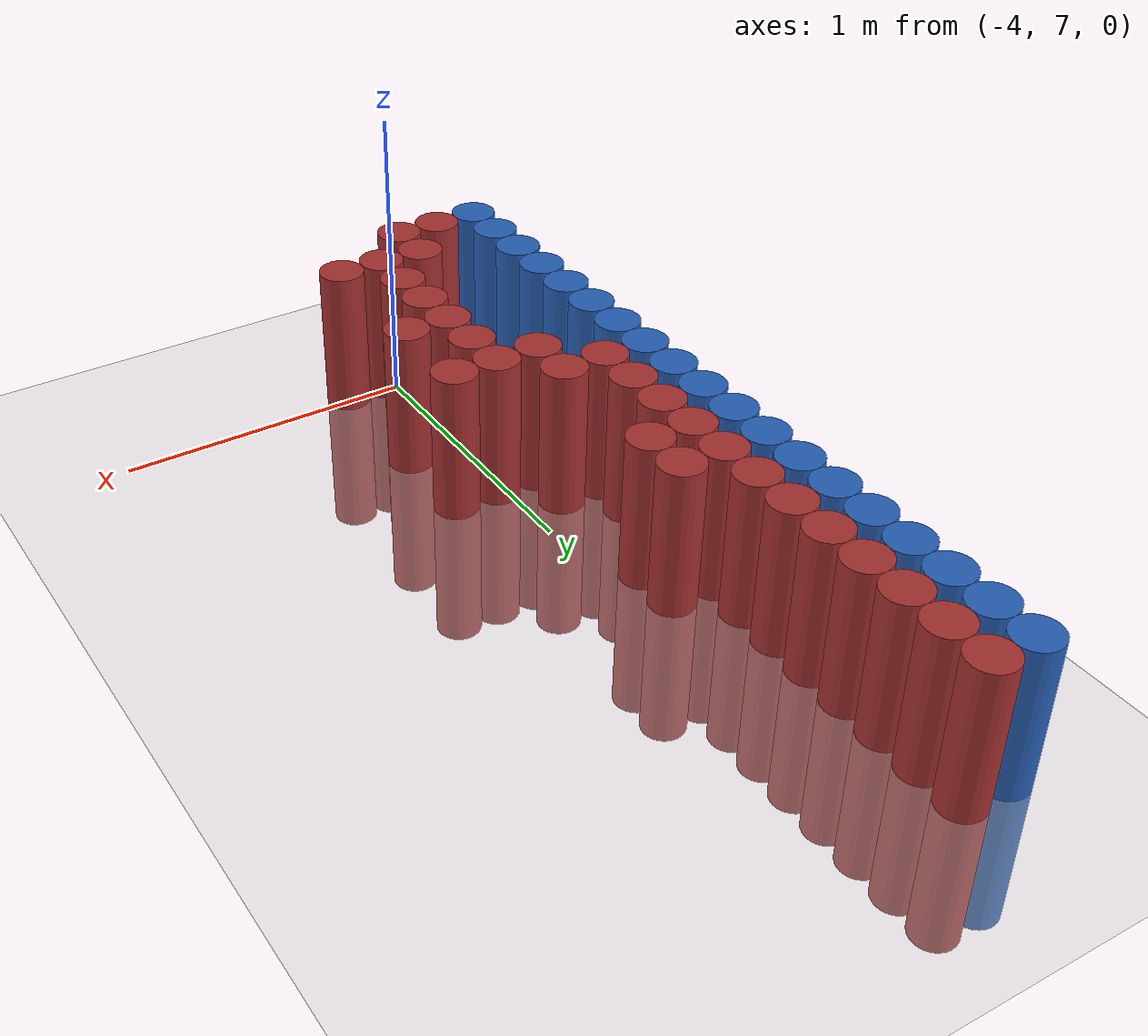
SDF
<sdf version="1.6">
 <world name="default">
  <model name="ground_plane">
   <static>1</static>
   <link name="link">
    <collision name="collision">
     <geometry><plane><normal>0 0 1</normal><size>100 100</size></plane></geometry>
     <surface><friction><ode><mu>100</mu><mu2>50</mu2></ode></friction></surface>
    </collision>
    <visual name="visual">
     <cast_shadows>0</cast_shadows>
     <geometry><plane><normal>0 0 1</normal><size>100 100</size></plane></geometry>
     <material>
      <script><uri>file://media/materials/scripts/gazebo.material</uri><name>Gazebo/Grey</name></script>
     </material>
    </visual>
   </link>
  </model>
  <model name="unit_cylinder_107">
   <static>1</static>
   <pose>-4.425000 6.825000 0.000000 0.000000 0.000000 0.000000</pose>
   <link name="link">
    <inertial>
     <mass>1</mass>
     <inertia><ixx>0.145833</ixx><ixy>0</ixy><ixz>0</ixz><iyy>0.145833</iyy><iyz>0</iyz><izz>0.125</izz></inertia>
    </inertial>
    <collision name="collision">
     <geometry><cylinder><radius>0.075000</radius><length>1</length></cylinder></geometry>
    </collision>
    <visual name="visual">
     <geometry><cylinder><radius>0.075000</radius><length>1</length></cylinder></geometry>
     <material>
      <ambient>0.152000 0.379000 0.720000 1</ambient>
      <diffuse>0.152000 0.379000 0.720000 1</diffuse>
     </material>
     <material>
      <script><name>Gazebo/Grey</name><uri>file://media/materials/scripts/gazebo.material</uri></script>
     </material>
    </visual>
   </link>
  </model>
  <model name="unit_cylinder_108">
   <static>1</static>
   <pose>-4.425000 6.975000 0.000000 0.000000 0.000000 0.000000</pose>
   <link name="link">
    <inertial>
     <mass>1</mass>
     <inertia><ixx>0.145833</ixx><ixy>0</ixy><ixz>0</ixz><iyy>0.145833</iyy><iyz>0</iyz><izz>0.125</izz></inertia>
    </inertial>
    <collision name="collision">
     <geometry><cylinder><radius>0.075000</radius><length>1</length></cylinder></geometry>
    </collision>
    <visual name="visual">
     <geometry><cylinder><radius>0.075000</radius><length>1</length></cylinder></geometry>
     <material>
      <ambient>0.152000 0.379000 0.720000 1</ambient>
      <diffuse>0.152000 0.379000 0.720000 1</diffuse>
     </material>
     <material>
      <script><name>Gazebo/Grey</name><uri>file://media/materials/scripts/gazebo.material</uri></script>
     </material>
    </visual>
   </link>
  </model>
  <model name="unit_cylinder_109">
   <static>1</static>
   <pose>-4.425000 7.125000 0.000000 0.000000 0.000000 0.000000</pose>
   <link name="link">
    <inertial>
     <mass>1</mass>
     <inertia><ixx>0.145833</ixx><ixy>0</ixy><ixz>0</ixz><iyy>0.145833</iyy><iyz>0</iyz><izz>0.125</izz></inertia>
    </inertial>
    <collision name="collision">
     <geometry><cylinder><radius>0.075000</radius><length>1</length></cylinder></geometry>
    </collision>
    <visual name="visual">
     <geometry><cylinder><radius>0.075000</radius><length>1</length></cylinder></geometry>
     <material>
      <ambient>0.152000 0.379000 0.720000 1</ambient>
      <diffuse>0.152000 0.379000 0.720000 1</diffuse>
     </material>
     <material>
      <script><name>Gazebo/Grey</name><uri>file://media/materials/scripts/gazebo.material</uri></script>
     </material>
    </visual>
   </link>
  </model>
  <model name="unit_cylinder_110">
   <static>1</static>
   <pose>-4.425000 7.275000 0.000000 0.000000 0.000000 0.000000</pose>
   <link name="link">
    <inertial>
     <mass>1</mass>
     <inertia><ixx>0.145833</ixx><ixy>0</ixy><ixz>0</ixz><iyy>0.145833</iyy><iyz>0</iyz><izz>0.125</izz></inertia>
    </inertial>
    <collision name="collision">
     <geometry><cylinder><radius>0.075000</radius><length>1</length></cylinder></geometry>
    </collision>
    <visual name="visual">
     <geometry><cylinder><radius>0.075000</radius><length>1</length></cylinder></geometry>
     <material>
      <ambient>0.152000 0.379000 0.720000 1</ambient>
      <diffuse>0.152000 0.379000 0.720000 1</diffuse>
     </material>
     <material>
      <script><name>Gazebo/Grey</name><uri>file://media/materials/scripts/gazebo.material</uri></script>
     </material>
    </visual>
   </link>
  </model>
  <model name="unit_cylinder_111">
   <static>1</static>
   <pose>-4.425000 7.425000 0.000000 0.000000 0.000000 0.000000</pose>
   <link name="link">
    <inertial>
     <mass>1</mass>
     <inertia><ixx>0.145833</ixx><ixy>0</ixy><ixz>0</ixz><iyy>0.145833</iyy><iyz>0</iyz><izz>0.125</izz></inertia>
    </inertial>
    <collision name="collision">
     <geometry><cylinder><radius>0.075000</radius><length>1</length></cylinder></geometry>
    </collision>
    <visual name="visual">
     <geometry><cylinder><radius>0.075000</radius><length>1</length></cylinder></geometry>
     <material>
      <ambient>0.152000 0.379000 0.720000 1</ambient>
      <diffuse>0.152000 0.379000 0.720000 1</diffuse>
     </material>
     <material>
      <script><name>Gazebo/Grey</name><uri>file://media/materials/scripts/gazebo.material</uri></script>
     </material>
    </visual>
   </link>
  </model>
  <model name="unit_cylinder_112">
   <static>1</static>
   <pose>-4.425000 7.575000 0.000000 0.000000 0.000000 0.000000</pose>
   <link name="link">
    <inertial>
     <mass>1</mass>
     <inertia><ixx>0.145833</ixx><ixy>0</ixy><ixz>0</ixz><iyy>0.145833</iyy><iyz>0</iyz><izz>0.125</izz></inertia>
    </inertial>
    <collision name="collision">
     <geometry><cylinder><radius>0.075000</radius><length>1</length></cylinder></geometry>
    </collision>
    <visual name="visual">
     <geometry><cylinder><radius>0.075000</radius><length>1</length></cylinder></geometry>
     <material>
      <ambient>0.152000 0.379000 0.720000 1</ambient>
      <diffuse>0.152000 0.379000 0.720000 1</diffuse>
     </material>
     <material>
      <script><name>Gazebo/Grey</name><uri>file://media/materials/scripts/gazebo.material</uri></script>
     </material>
    </visual>
   </link>
  </model>
  <model name="unit_cylinder_113">
   <static>1</static>
   <pose>-4.425000 7.725000 0.000000 0.000000 0.000000 0.000000</pose>
   <link name="link">
    <inertial>
     <mass>1</mass>
     <inertia><ixx>0.145833</ixx><ixy>0</ixy><ixz>0</ixz><iyy>0.145833</iyy><iyz>0</iyz><izz>0.125</izz></inertia>
    </inertial>
    <collision name="collision">
     <geometry><cylinder><radius>0.075000</radius><length>1</length></cylinder></geometry>
    </collision>
    <visual name="visual">
     <geometry><cylinder><radius>0.075000</radius><length>1</length></cylinder></geometry>
     <material>
      <ambient>0.152000 0.379000 0.720000 1</ambient>
      <diffuse>0.152000 0.379000 0.720000 1</diffuse>
     </material>
     <material>
      <script><name>Gazebo/Grey</name><uri>file://media/materials/scripts/gazebo.material</uri></script>
     </material>
    </visual>
   </link>
  </model>
  <model name="unit_cylinder_114">
   <static>1</static>
   <pose>-4.425000 7.875000 0.000000 0.000000 0.000000 0.000000</pose>
   <link name="link">
    <inertial>
     <mass>1</mass>
     <inertia><ixx>0.145833</ixx><ixy>0</ixy><ixz>0</ixz><iyy>0.145833</iyy><iyz>0</iyz><izz>0.125</izz></inertia>
    </inertial>
    <collision name="collision">
     <geometry><cylinder><radius>0.075000</radius><length>1</length></cylinder></geometry>
    </collision>
    <visual name="visual">
     <geometry><cylinder><radius>0.075000</radius><length>1</length></cylinder></geometry>
     <material>
      <ambient>0.152000 0.379000 0.720000 1</ambient>
      <diffuse>0.152000 0.379000 0.720000 1</diffuse>
     </material>
     <material>
      <script><name>Gazebo/Grey</name><uri>file://media/materials/scripts/gazebo.material</uri></script>
     </material>
    </visual>
   </link>
  </model>
  <model name="unit_cylinder_115">
   <static>1</static>
   <pose>-4.425000 8.025000 0.000000 0.000000 0.000000 0.000000</pose>
   <link name="link">
    <inertial>
     <mass>1</mass>
     <inertia><ixx>0.145833</ixx><ixy>0</ixy><ixz>0</ixz><iyy>0.145833</iyy><iyz>0</iyz><izz>0.125</izz></inertia>
    </inertial>
    <collision name="collision">
     <geometry><cylinder><radius>0.075000</radius><length>1</length></cylinder></geometry>
    </collision>
    <visual name="visual">
     <geometry><cylinder><radius>0.075000</radius><length>1</length></cylinder></geometry>
     <material>
      <ambient>0.152000 0.379000 0.720000 1</ambient>
      <diffuse>0.152000 0.379000 0.720000 1</diffuse>
     </material>
     <material>
      <script><name>Gazebo/Grey</name><uri>file://media/materials/scripts/gazebo.material</uri></script>
     </material>
    </visual>
   </link>
  </model>
  <model name="unit_cylinder_116">
   <static>1</static>
   <pose>-4.425000 8.175000 0.000000 0.000000 0.000000 0.000000</pose>
   <link name="link">
    <inertial>
     <mass>1</mass>
     <inertia><ixx>0.145833</ixx><ixy>0</ixy><ixz>0</ixz><iyy>0.145833</iyy><iyz>0</iyz><izz>0.125</izz></inertia>
    </inertial>
    <collision name="collision">
     <geometry><cylinder><radius>0.075000</radius><length>1</length></cylinder></geometry>
    </collision>
    <visual name="visual">
     <geometry><cylinder><radius>0.075000</radius><length>1</length></cylinder></geometry>
     <material>
      <ambient>0.152000 0.379000 0.720000 1</ambient>
      <diffuse>0.152000 0.379000 0.720000 1</diffuse>
     </material>
     <material>
      <script><name>Gazebo/Grey</name><uri>file://media/materials/scripts/gazebo.material</uri></script>
     </material>
    </visual>
   </link>
  </model>
  <model name="unit_cylinder_117">
   <static>1</static>
   <pose>-4.425000 8.325000 0.000000 0.000000 0.000000 0.000000</pose>
   <link name="link">
    <inertial>
     <mass>1</mass>
     <inertia><ixx>0.145833</ixx><ixy>0</ixy><ixz>0</ixz><iyy>0.145833</iyy><iyz>0</iyz><izz>0.125</izz></inertia>
    </inertial>
    <collision name="collision">
     <geometry><cylinder><radius>0.075000</radius><length>1</length></cylinder></geometry>
    </collision>
    <visual name="visual">
     <geometry><cylinder><radius>0.075000</radius><length>1</length></cylinder></geometry>
     <material>
      <ambient>0.152000 0.379000 0.720000 1</ambient>
      <diffuse>0.152000 0.379000 0.720000 1</diffuse>
     </material>
     <material>
      <script><name>Gazebo/Grey</name><uri>file://media/materials/scripts/gazebo.material</uri></script>
     </material>
    </visual>
   </link>
  </model>
  <model name="unit_cylinder_118">
   <static>1</static>
   <pose>-4.425000 8.475000 0.000000 0.000000 0.000000 0.000000</pose>
   <link name="link">
    <inertial>
     <mass>1</mass>
     <inertia><ixx>0.145833</ixx><ixy>0</ixy><ixz>0</ixz><iyy>0.145833</iyy><iyz>0</iyz><izz>0.125</izz></inertia>
    </inertial>
    <collision name="collision">
     <geometry><cylinder><radius>0.075000</radius><length>1</length></cylinder></geometry>
    </collision>
    <visual name="visual">
     <geometry><cylinder><radius>0.075000</radius><length>1</length></cylinder></geometry>
     <material>
      <ambient>0.152000 0.379000 0.720000 1</ambient>
      <diffuse>0.152000 0.379000 0.720000 1</diffuse>
     </material>
     <material>
      <script><name>Gazebo/Grey</name><uri>file://media/materials/scripts/gazebo.material</uri></script>
     </material>
    </visual>
   </link>
  </model>
  <model name="unit_cylinder_119">
   <static>1</static>
   <pose>-4.425000 8.625000 0.000000 0.000000 0.000000 0.000000</pose>
   <link name="link">
    <inertial>
     <mass>1</mass>
     <inertia><ixx>0.145833</ixx><ixy>0</ixy><ixz>0</ixz><iyy>0.145833</iyy><iyz>0</iyz><izz>0.125</izz></inertia>
    </inertial>
    <collision name="collision">
     <geometry><cylinder><radius>0.075000</radius><length>1</length></cylinder></geometry>
    </collision>
    <visual name="visual">
     <geometry><cylinder><radius>0.075000</radius><length>1</length></cylinder></geometry>
     <material>
      <ambient>0.152000 0.379000 0.720000 1</ambient>
      <diffuse>0.152000 0.379000 0.720000 1</diffuse>
     </material>
     <material>
      <script><name>Gazebo/Grey</name><uri>file://media/materials/scripts/gazebo.material</uri></script>
     </material>
    </visual>
   </link>
  </model>
  <model name="unit_cylinder_120">
   <static>1</static>
   <pose>-4.425000 8.775000 0.000000 0.000000 0.000000 0.000000</pose>
   <link name="link">
    <inertial>
     <mass>1</mass>
     <inertia><ixx>0.145833</ixx><ixy>0</ixy><ixz>0</ixz><iyy>0.145833</iyy><iyz>0</iyz><izz>0.125</izz></inertia>
    </inertial>
    <collision name="collision">
     <geometry><cylinder><radius>0.075000</radius><length>1</length></cylinder></geometry>
    </collision>
    <visual name="visual">
     <geometry><cylinder><radius>0.075000</radius><length>1</length></cylinder></geometry>
     <material>
      <ambient>0.152000 0.379000 0.720000 1</ambient>
      <diffuse>0.152000 0.379000 0.720000 1</diffuse>
     </material>
     <material>
      <script><name>Gazebo/Grey</name><uri>file://media/materials/scripts/gazebo.material</uri></script>
     </material>
    </visual>
   </link>
  </model>
  <model name="unit_cylinder_121">
   <static>1</static>
   <pose>-4.425000 8.925000 0.000000 0.000000 0.000000 0.000000</pose>
   <link name="link">
    <inertial>
     <mass>1</mass>
     <inertia><ixx>0.145833</ixx><ixy>0</ixy><ixz>0</ixz><iyy>0.145833</iyy><iyz>0</iyz><izz>0.125</izz></inertia>
    </inertial>
    <collision name="collision">
     <geometry><cylinder><radius>0.075000</radius><length>1</length></cylinder></geometry>
    </collision>
    <visual name="visual">
     <geometry><cylinder><radius>0.075000</radius><length>1</length></cylinder></geometry>
     <material>
      <ambient>0.152000 0.379000 0.720000 1</ambient>
      <diffuse>0.152000 0.379000 0.720000 1</diffuse>
     </material>
     <material>
      <script><name>Gazebo/Grey</name><uri>file://media/materials/scripts/gazebo.material</uri></script>
     </material>
    </visual>
   </link>
  </model>
  <model name="unit_cylinder_122">
   <static>1</static>
   <pose>-4.425000 9.075000 0.000000 0.000000 0.000000 0.000000</pose>
   <link name="link">
    <inertial>
     <mass>1</mass>
     <inertia><ixx>0.145833</ixx><ixy>0</ixy><ixz>0</ixz><iyy>0.145833</iyy><iyz>0</iyz><izz>0.125</izz></inertia>
    </inertial>
    <collision name="collision">
     <geometry><cylinder><radius>0.075000</radius><length>1</length></cylinder></geometry>
    </collision>
    <visual name="visual">
     <geometry><cylinder><radius>0.075000</radius><length>1</length></cylinder></geometry>
     <material>
      <ambient>0.152000 0.379000 0.720000 1</ambient>
      <diffuse>0.152000 0.379000 0.720000 1</diffuse>
     </material>
     <material>
      <script><name>Gazebo/Grey</name><uri>file://media/materials/scripts/gazebo.material</uri></script>
     </material>
    </visual>
   </link>
  </model>
  <model name="unit_cylinder_123">
   <static>1</static>
   <pose>-4.425000 9.225000 0.000000 0.000000 0.000000 0.000000</pose>
   <link name="link">
    <inertial>
     <mass>1</mass>
     <inertia><ixx>0.145833</ixx><ixy>0</ixy><ixz>0</ixz><iyy>0.145833</iyy><iyz>0</iyz><izz>0.125</izz></inertia>
    </inertial>
    <collision name="collision">
     <geometry><cylinder><radius>0.075000</radius><length>1</length></cylinder></geometry>
    </collision>
    <visual name="visual">
     <geometry><cylinder><radius>0.075000</radius><length>1</length></cylinder></geometry>
     <material>
      <ambient>0.152000 0.379000 0.720000 1</ambient>
      <diffuse>0.152000 0.379000 0.720000 1</diffuse>
     </material>
     <material>
      <script><name>Gazebo/Grey</name><uri>file://media/materials/scripts/gazebo.material</uri></script>
     </material>
    </visual>
   </link>
  </model>
  <model name="unit_cylinder_124">
   <static>1</static>
   <pose>-4.425000 9.375000 0.000000 0.000000 0.000000 0.000000</pose>
   <link name="link">
    <inertial>
     <mass>1</mass>
     <inertia><ixx>0.145833</ixx><ixy>0</ixy><ixz>0</ixz><iyy>0.145833</iyy><iyz>0</iyz><izz>0.125</izz></inertia>
    </inertial>
    <collision name="collision">
     <geometry><cylinder><radius>0.075000</radius><length>1</length></cylinder></geometry>
    </collision>
    <visual name="visual">
     <geometry><cylinder><radius>0.075000</radius><length>1</length></cylinder></geometry>
     <material>
      <ambient>0.152000 0.379000 0.720000 1</ambient>
      <diffuse>0.152000 0.379000 0.720000 1</diffuse>
     </material>
     <material>
      <script><name>Gazebo/Grey</name><uri>file://media/materials/scripts/gazebo.material</uri></script>
     </material>
    </visual>
   </link>
  </model>
  <model name="unit_cylinder_125">
   <static>1</static>
   <pose>-4.425000 9.525000 0.000000 0.000000 0.000000 0.000000</pose>
   <link name="link">
    <inertial>
     <mass>1</mass>
     <inertia><ixx>0.145833</ixx><ixy>0</ixy><ixz>0</ixz><iyy>0.145833</iyy><iyz>0</iyz><izz>0.125</izz></inertia>
    </inertial>
    <collision name="collision">
     <geometry><cylinder><radius>0.075000</radius><length>1</length></cylinder></geometry>
    </collision>
    <visual name="visual">
     <geometry><cylinder><radius>0.075000</radius><length>1</length></cylinder></geometry>
     <material>
      <ambient>0.152000 0.379000 0.720000 1</ambient>
      <diffuse>0.152000 0.379000 0.720000 1</diffuse>
     </material>
     <material>
      <script><name>Gazebo/Grey</name><uri>file://media/materials/scripts/gazebo.material</uri></script>
     </material>
    </visual>
   </link>
  </model>
  <model name="unit_cylinder_130">
   <static>1</static>
   <pose>-4.275000 6.825000 0.000000 0.000000 0.000000 0.000000</pose>
   <link name="link">
    <inertial>
     <mass>1</mass>
     <inertia><ixx>0.145833</ixx><ixy>0</ixy><ixz>0</ixz><iyy>0.145833</iyy><iyz>0</iyz><izz>0.125</izz></inertia>
    </inertial>
    <collision name="collision">
     <geometry><cylinder><radius>0.075000</radius><length>1</length></cylinder></geometry>
    </collision>
    <visual name="visual">
     <geometry><cylinder><radius>0.075000</radius><length>1</length></cylinder></geometry>
     <material>
      <ambient>0.648000 0.192000 0.192000 1</ambient>
      <diffuse>0.648000 0.192000 0.192000 1</diffuse>
     </material>
     <material>
      <script><name>Gazebo/Grey</name><uri>file://media/materials/scripts/gazebo.material</uri></script>
     </material>
    </visual>
   </link>
  </model>
  <model name="unit_cylinder_131">
   <static>1</static>
   <pose>-4.275000 7.875000 0.000000 0.000000 0.000000 0.000000</pose>
   <link name="link">
    <inertial>
     <mass>1</mass>
     <inertia><ixx>0.145833</ixx><ixy>0</ixy><ixz>0</ixz><iyy>0.145833</iyy><iyz>0</iyz><izz>0.125</izz></inertia>
    </inertial>
    <collision name="collision">
     <geometry><cylinder><radius>0.075000</radius><length>1</length></cylinder></geometry>
    </collision>
    <visual name="visual">
     <geometry><cylinder><radius>0.075000</radius><length>1</length></cylinder></geometry>
     <material>
      <ambient>0.648000 0.192000 0.192000 1</ambient>
      <diffuse>0.648000 0.192000 0.192000 1</diffuse>
     </material>
     <material>
      <script><name>Gazebo/Grey</name><uri>file://media/materials/scripts/gazebo.material</uri></script>
     </material>
    </visual>
   </link>
  </model>
  <model name="unit_cylinder_132">
   <static>1</static>
   <pose>-4.275000 8.025000 0.000000 0.000000 0.000000 0.000000</pose>
   <link name="link">
    <inertial>
     <mass>1</mass>
     <inertia><ixx>0.145833</ixx><ixy>0</ixy><ixz>0</ixz><iyy>0.145833</iyy><iyz>0</iyz><izz>0.125</izz></inertia>
    </inertial>
    <collision name="collision">
     <geometry><cylinder><radius>0.075000</radius><length>1</length></cylinder></geometry>
    </collision>
    <visual name="visual">
     <geometry><cylinder><radius>0.075000</radius><length>1</length></cylinder></geometry>
     <material>
      <ambient>0.648000 0.192000 0.192000 1</ambient>
      <diffuse>0.648000 0.192000 0.192000 1</diffuse>
     </material>
     <material>
      <script><name>Gazebo/Grey</name><uri>file://media/materials/scripts/gazebo.material</uri></script>
     </material>
    </visual>
   </link>
  </model>
  <model name="unit_cylinder_133">
   <static>1</static>
   <pose>-4.275000 8.175000 0.000000 0.000000 0.000000 0.000000</pose>
   <link name="link">
    <inertial>
     <mass>1</mass>
     <inertia><ixx>0.145833</ixx><ixy>0</ixy><ixz>0</ixz><iyy>0.145833</iyy><iyz>0</iyz><izz>0.125</izz></inertia>
    </inertial>
    <collision name="collision">
     <geometry><cylinder><radius>0.075000</radius><length>1</length></cylinder></geometry>
    </collision>
    <visual name="visual">
     <geometry><cylinder><radius>0.075000</radius><length>1</length></cylinder></geometry>
     <material>
      <ambient>0.648000 0.192000 0.192000 1</ambient>
      <diffuse>0.648000 0.192000 0.192000 1</diffuse>
     </material>
     <material>
      <script><name>Gazebo/Grey</name><uri>file://media/materials/scripts/gazebo.material</uri></script>
     </material>
    </visual>
   </link>
  </model>
  <model name="unit_cylinder_134">
   <static>1</static>
   <pose>-4.275000 8.325000 0.000000 0.000000 0.000000 0.000000</pose>
   <link name="link">
    <inertial>
     <mass>1</mass>
     <inertia><ixx>0.145833</ixx><ixy>0</ixy><ixz>0</ixz><iyy>0.145833</iyy><iyz>0</iyz><izz>0.125</izz></inertia>
    </inertial>
    <collision name="collision">
     <geometry><cylinder><radius>0.075000</radius><length>1</length></cylinder></geometry>
    </collision>
    <visual name="visual">
     <geometry><cylinder><radius>0.075000</radius><length>1</length></cylinder></geometry>
     <material>
      <ambient>0.648000 0.192000 0.192000 1</ambient>
      <diffuse>0.648000 0.192000 0.192000 1</diffuse>
     </material>
     <material>
      <script><name>Gazebo/Grey</name><uri>file://media/materials/scripts/gazebo.material</uri></script>
     </material>
    </visual>
   </link>
  </model>
  <model name="unit_cylinder_135">
   <static>1</static>
   <pose>-4.275000 8.475000 0.000000 0.000000 0.000000 0.000000</pose>
   <link name="link">
    <inertial>
     <mass>1</mass>
     <inertia><ixx>0.145833</ixx><ixy>0</ixy><ixz>0</ixz><iyy>0.145833</iyy><iyz>0</iyz><izz>0.125</izz></inertia>
    </inertial>
    <collision name="collision">
     <geometry><cylinder><radius>0.075000</radius><length>1</length></cylinder></geometry>
    </collision>
    <visual name="visual">
     <geometry><cylinder><radius>0.075000</radius><length>1</length></cylinder></geometry>
     <material>
      <ambient>0.648000 0.192000 0.192000 1</ambient>
      <diffuse>0.648000 0.192000 0.192000 1</diffuse>
     </material>
     <material>
      <script><name>Gazebo/Grey</name><uri>file://media/materials/scripts/gazebo.material</uri></script>
     </material>
    </visual>
   </link>
  </model>
  <model name="unit_cylinder_136">
   <static>1</static>
   <pose>-4.275000 8.625000 0.000000 0.000000 0.000000 0.000000</pose>
   <link name="link">
    <inertial>
     <mass>1</mass>
     <inertia><ixx>0.145833</ixx><ixy>0</ixy><ixz>0</ixz><iyy>0.145833</iyy><iyz>0</iyz><izz>0.125</izz></inertia>
    </inertial>
    <collision name="collision">
     <geometry><cylinder><radius>0.075000</radius><length>1</length></cylinder></geometry>
    </collision>
    <visual name="visual">
     <geometry><cylinder><radius>0.075000</radius><length>1</length></cylinder></geometry>
     <material>
      <ambient>0.648000 0.192000 0.192000 1</ambient>
      <diffuse>0.648000 0.192000 0.192000 1</diffuse>
     </material>
     <material>
      <script><name>Gazebo/Grey</name><uri>file://media/materials/scripts/gazebo.material</uri></script>
     </material>
    </visual>
   </link>
  </model>
  <model name="unit_cylinder_137">
   <static>1</static>
   <pose>-4.275000 8.775000 0.000000 0.000000 0.000000 0.000000</pose>
   <link name="link">
    <inertial>
     <mass>1</mass>
     <inertia><ixx>0.145833</ixx><ixy>0</ixy><ixz>0</ixz><iyy>0.145833</iyy><iyz>0</iyz><izz>0.125</izz></inertia>
    </inertial>
    <collision name="collision">
     <geometry><cylinder><radius>0.075000</radius><length>1</length></cylinder></geometry>
    </collision>
    <visual name="visual">
     <geometry><cylinder><radius>0.075000</radius><length>1</length></cylinder></geometry>
     <material>
      <ambient>0.648000 0.192000 0.192000 1</ambient>
      <diffuse>0.648000 0.192000 0.192000 1</diffuse>
     </material>
     <material>
      <script><name>Gazebo/Grey</name><uri>file://media/materials/scripts/gazebo.material</uri></script>
     </material>
    </visual>
   </link>
  </model>
  <model name="unit_cylinder_138">
   <static>1</static>
   <pose>-4.275000 8.925000 0.000000 0.000000 0.000000 0.000000</pose>
   <link name="link">
    <inertial>
     <mass>1</mass>
     <inertia><ixx>0.145833</ixx><ixy>0</ixy><ixz>0</ixz><iyy>0.145833</iyy><iyz>0</iyz><izz>0.125</izz></inertia>
    </inertial>
    <collision name="collision">
     <geometry><cylinder><radius>0.075000</radius><length>1</length></cylinder></geometry>
    </collision>
    <visual name="visual">
     <geometry><cylinder><radius>0.075000</radius><length>1</length></cylinder></geometry>
     <material>
      <ambient>0.648000 0.192000 0.192000 1</ambient>
      <diffuse>0.648000 0.192000 0.192000 1</diffuse>
     </material>
     <material>
      <script><name>Gazebo/Grey</name><uri>file://media/materials/scripts/gazebo.material</uri></script>
     </material>
    </visual>
   </link>
  </model>
  <model name="unit_cylinder_139">
   <static>1</static>
   <pose>-4.275000 9.075000 0.000000 0.000000 0.000000 0.000000</pose>
   <link name="link">
    <inertial>
     <mass>1</mass>
     <inertia><ixx>0.145833</ixx><ixy>0</ixy><ixz>0</ixz><iyy>0.145833</iyy><iyz>0</iyz><izz>0.125</izz></inertia>
    </inertial>
    <collision name="collision">
     <geometry><cylinder><radius>0.075000</radius><length>1</length></cylinder></geometry>
    </collision>
    <visual name="visual">
     <geometry><cylinder><radius>0.075000</radius><length>1</length></cylinder></geometry>
     <material>
      <ambient>0.648000 0.192000 0.192000 1</ambient>
      <diffuse>0.648000 0.192000 0.192000 1</diffuse>
     </material>
     <material>
      <script><name>Gazebo/Grey</name><uri>file://media/materials/scripts/gazebo.material</uri></script>
     </material>
    </visual>
   </link>
  </model>
  <model name="unit_cylinder_140">
   <static>1</static>
   <pose>-4.275000 9.225000 0.000000 0.000000 0.000000 0.000000</pose>
   <link name="link">
    <inertial>
     <mass>1</mass>
     <inertia><ixx>0.145833</ixx><ixy>0</ixy><ixz>0</ixz><iyy>0.145833</iyy><iyz>0</iyz><izz>0.125</izz></inertia>
    </inertial>
    <collision name="collision">
     <geometry><cylinder><radius>0.075000</radius><length>1</length></cylinder></geometry>
    </collision>
    <visual name="visual">
     <geometry><cylinder><radius>0.075000</radius><length>1</length></cylinder></geometry>
     <material>
      <ambient>0.648000 0.192000 0.192000 1</ambient>
      <diffuse>0.648000 0.192000 0.192000 1</diffuse>
     </material>
     <material>
      <script><name>Gazebo/Grey</name><uri>file://media/materials/scripts/gazebo.material</uri></script>
     </material>
    </visual>
   </link>
  </model>
  <model name="unit_cylinder_141">
   <static>1</static>
   <pose>-4.275000 9.375000 0.000000 0.000000 0.000000 0.000000</pose>
   <link name="link">
    <inertial>
     <mass>1</mass>
     <inertia><ixx>0.145833</ixx><ixy>0</ixy><ixz>0</ixz><iyy>0.145833</iyy><iyz>0</iyz><izz>0.125</izz></inertia>
    </inertial>
    <collision name="collision">
     <geometry><cylinder><radius>0.075000</radius><length>1</length></cylinder></geometry>
    </collision>
    <visual name="visual">
     <geometry><cylinder><radius>0.075000</radius><length>1</length></cylinder></geometry>
     <material>
      <ambient>0.648000 0.192000 0.192000 1</ambient>
      <diffuse>0.648000 0.192000 0.192000 1</diffuse>
     </material>
     <material>
      <script><name>Gazebo/Grey</name><uri>file://media/materials/scripts/gazebo.material</uri></script>
     </material>
    </visual>
   </link>
  </model>
  <model name="unit_cylinder_142">
   <static>1</static>
   <pose>-4.275000 9.525000 0.000000 0.000000 0.000000 0.000000</pose>
   <link name="link">
    <inertial>
     <mass>1</mass>
     <inertia><ixx>0.145833</ixx><ixy>0</ixy><ixz>0</ixz><iyy>0.145833</iyy><iyz>0</iyz><izz>0.125</izz></inertia>
    </inertial>
    <collision name="collision">
     <geometry><cylinder><radius>0.075000</radius><length>1</length></cylinder></geometry>
    </collision>
    <visual name="visual">
     <geometry><cylinder><radius>0.075000</radius><length>1</length></cylinder></geometry>
     <material>
      <ambient>0.648000 0.192000 0.192000 1</ambient>
      <diffuse>0.648000 0.192000 0.192000 1</diffuse>
     </material>
     <material>
      <script><name>Gazebo/Grey</name><uri>file://media/materials/scripts/gazebo.material</uri></script>
     </material>
    </visual>
   </link>
  </model>
  <model name="unit_cylinder_143">
   <static>1</static>
   <pose>-4.125000 6.825000 0.000000 0.000000 0.000000 0.000000</pose>
   <link name="link">
    <inertial>
     <mass>1</mass>
     <inertia><ixx>0.145833</ixx><ixy>0</ixy><ixz>0</ixz><iyy>0.145833</iyy><iyz>0</iyz><izz>0.125</izz></inertia>
    </inertial>
    <collision name="collision">
     <geometry><cylinder><radius>0.075000</radius><length>1</length></cylinder></geometry>
    </collision>
    <visual name="visual">
     <geometry><cylinder><radius>0.075000</radius><length>1</length></cylinder></geometry>
     <material>
      <ambient>0.648000 0.192000 0.192000 1</ambient>
      <diffuse>0.648000 0.192000 0.192000 1</diffuse>
     </material>
     <material>
      <script><name>Gazebo/Grey</name><uri>file://media/materials/scripts/gazebo.material</uri></script>
     </material>
    </visual>
   </link>
  </model>
  <model name="unit_cylinder_144">
   <static>1</static>
   <pose>-4.125000 6.975000 0.000000 0.000000 0.000000 0.000000</pose>
   <link name="link">
    <inertial>
     <mass>1</mass>
     <inertia><ixx>0.145833</ixx><ixy>0</ixy><ixz>0</ixz><iyy>0.145833</iyy><iyz>0</iyz><izz>0.125</izz></inertia>
    </inertial>
    <collision name="collision">
     <geometry><cylinder><radius>0.075000</radius><length>1</length></cylinder></geometry>
    </collision>
    <visual name="visual">
     <geometry><cylinder><radius>0.075000</radius><length>1</length></cylinder></geometry>
     <material>
      <ambient>0.648000 0.192000 0.192000 1</ambient>
      <diffuse>0.648000 0.192000 0.192000 1</diffuse>
     </material>
     <material>
      <script><name>Gazebo/Grey</name><uri>file://media/materials/scripts/gazebo.material</uri></script>
     </material>
    </visual>
   </link>
  </model>
  <model name="unit_cylinder_145">
   <static>1</static>
   <pose>-4.125000 7.725000 0.000000 0.000000 0.000000 0.000000</pose>
   <link name="link">
    <inertial>
     <mass>1</mass>
     <inertia><ixx>0.145833</ixx><ixy>0</ixy><ixz>0</ixz><iyy>0.145833</iyy><iyz>0</iyz><izz>0.125</izz></inertia>
    </inertial>
    <collision name="collision">
     <geometry><cylinder><radius>0.075000</radius><length>1</length></cylinder></geometry>
    </collision>
    <visual name="visual">
     <geometry><cylinder><radius>0.075000</radius><length>1</length></cylinder></geometry>
     <material>
      <ambient>0.648000 0.192000 0.192000 1</ambient>
      <diffuse>0.648000 0.192000 0.192000 1</diffuse>
     </material>
     <material>
      <script><name>Gazebo/Grey</name><uri>file://media/materials/scripts/gazebo.material</uri></script>
     </material>
    </visual>
   </link>
  </model>
  <model name="unit_cylinder_146">
   <static>1</static>
   <pose>-4.125000 7.875000 0.000000 0.000000 0.000000 0.000000</pose>
   <link name="link">
    <inertial>
     <mass>1</mass>
     <inertia><ixx>0.145833</ixx><ixy>0</ixy><ixz>0</ixz><iyy>0.145833</iyy><iyz>0</iyz><izz>0.125</izz></inertia>
    </inertial>
    <collision name="collision">
     <geometry><cylinder><radius>0.075000</radius><length>1</length></cylinder></geometry>
    </collision>
    <visual name="visual">
     <geometry><cylinder><radius>0.075000</radius><length>1</length></cylinder></geometry>
     <material>
      <ambient>0.648000 0.192000 0.192000 1</ambient>
      <diffuse>0.648000 0.192000 0.192000 1</diffuse>
     </material>
     <material>
      <script><name>Gazebo/Grey</name><uri>file://media/materials/scripts/gazebo.material</uri></script>
     </material>
    </visual>
   </link>
  </model>
  <model name="unit_cylinder_147">
   <static>1</static>
   <pose>-4.125000 8.325000 0.000000 0.000000 0.000000 0.000000</pose>
   <link name="link">
    <inertial>
     <mass>1</mass>
     <inertia><ixx>0.145833</ixx><ixy>0</ixy><ixz>0</ixz><iyy>0.145833</iyy><iyz>0</iyz><izz>0.125</izz></inertia>
    </inertial>
    <collision name="collision">
     <geometry><cylinder><radius>0.075000</radius><length>1</length></cylinder></geometry>
    </collision>
    <visual name="visual">
     <geometry><cylinder><radius>0.075000</radius><length>1</length></cylinder></geometry>
     <material>
      <ambient>0.648000 0.192000 0.192000 1</ambient>
      <diffuse>0.648000 0.192000 0.192000 1</diffuse>
     </material>
     <material>
      <script><name>Gazebo/Grey</name><uri>file://media/materials/scripts/gazebo.material</uri></script>
     </material>
    </visual>
   </link>
  </model>
  <model name="unit_cylinder_148">
   <static>1</static>
   <pose>-4.125000 8.475000 0.000000 0.000000 0.000000 0.000000</pose>
   <link name="link">
    <inertial>
     <mass>1</mass>
     <inertia><ixx>0.145833</ixx><ixy>0</ixy><ixz>0</ixz><iyy>0.145833</iyy><iyz>0</iyz><izz>0.125</izz></inertia>
    </inertial>
    <collision name="collision">
     <geometry><cylinder><radius>0.075000</radius><length>1</length></cylinder></geometry>
    </collision>
    <visual name="visual">
     <geometry><cylinder><radius>0.075000</radius><length>1</length></cylinder></geometry>
     <material>
      <ambient>0.648000 0.192000 0.192000 1</ambient>
      <diffuse>0.648000 0.192000 0.192000 1</diffuse>
     </material>
     <material>
      <script><name>Gazebo/Grey</name><uri>file://media/materials/scripts/gazebo.material</uri></script>
     </material>
    </visual>
   </link>
  </model>
  <model name="unit_cylinder_149">
   <static>1</static>
   <pose>-3.975000 6.975000 0.000000 0.000000 0.000000 0.000000</pose>
   <link name="link">
    <inertial>
     <mass>1</mass>
     <inertia><ixx>0.145833</ixx><ixy>0</ixy><ixz>0</ixz><iyy>0.145833</iyy><iyz>0</iyz><izz>0.125</izz></inertia>
    </inertial>
    <collision name="collision">
     <geometry><cylinder><radius>0.075000</radius><length>1</length></cylinder></geometry>
    </collision>
    <visual name="visual">
     <geometry><cylinder><radius>0.075000</radius><length>1</length></cylinder></geometry>
     <material>
      <ambient>0.648000 0.192000 0.192000 1</ambient>
      <diffuse>0.648000 0.192000 0.192000 1</diffuse>
     </material>
     <material>
      <script><name>Gazebo/Grey</name><uri>file://media/materials/scripts/gazebo.material</uri></script>
     </material>
    </visual>
   </link>
  </model>
  <model name="unit_cylinder_150">
   <static>1</static>
   <pose>-3.975000 7.125000 0.000000 0.000000 0.000000 0.000000</pose>
   <link name="link">
    <inertial>
     <mass>1</mass>
     <inertia><ixx>0.145833</ixx><ixy>0</ixy><ixz>0</ixz><iyy>0.145833</iyy><iyz>0</iyz><izz>0.125</izz></inertia>
    </inertial>
    <collision name="collision">
     <geometry><cylinder><radius>0.075000</radius><length>1</length></cylinder></geometry>
    </collision>
    <visual name="visual">
     <geometry><cylinder><radius>0.075000</radius><length>1</length></cylinder></geometry>
     <material>
      <ambient>0.648000 0.192000 0.192000 1</ambient>
      <diffuse>0.648000 0.192000 0.192000 1</diffuse>
     </material>
     <material>
      <script><name>Gazebo/Grey</name><uri>file://media/materials/scripts/gazebo.material</uri></script>
     </material>
    </visual>
   </link>
  </model>
  <model name="unit_cylinder_151">
   <static>1</static>
   <pose>-3.975000 7.275000 0.000000 0.000000 0.000000 0.000000</pose>
   <link name="link">
    <inertial>
     <mass>1</mass>
     <inertia><ixx>0.145833</ixx><ixy>0</ixy><ixz>0</ixz><iyy>0.145833</iyy><iyz>0</iyz><izz>0.125</izz></inertia>
    </inertial>
    <collision name="collision">
     <geometry><cylinder><radius>0.075000</radius><length>1</length></cylinder></geometry>
    </collision>
    <visual name="visual">
     <geometry><cylinder><radius>0.075000</radius><length>1</length></cylinder></geometry>
     <material>
      <ambient>0.648000 0.192000 0.192000 1</ambient>
      <diffuse>0.648000 0.192000 0.192000 1</diffuse>
     </material>
     <material>
      <script><name>Gazebo/Grey</name><uri>file://media/materials/scripts/gazebo.material</uri></script>
     </material>
    </visual>
   </link>
  </model>
  <model name="unit_cylinder_152">
   <static>1</static>
   <pose>-3.975000 7.425000 0.000000 0.000000 0.000000 0.000000</pose>
   <link name="link">
    <inertial>
     <mass>1</mass>
     <inertia><ixx>0.145833</ixx><ixy>0</ixy><ixz>0</ixz><iyy>0.145833</iyy><iyz>0</iyz><izz>0.125</izz></inertia>
    </inertial>
    <collision name="collision">
     <geometry><cylinder><radius>0.075000</radius><length>1</length></cylinder></geometry>
    </collision>
    <visual name="visual">
     <geometry><cylinder><radius>0.075000</radius><length>1</length></cylinder></geometry>
     <material>
      <ambient>0.648000 0.192000 0.192000 1</ambient>
      <diffuse>0.648000 0.192000 0.192000 1</diffuse>
     </material>
     <material>
      <script><name>Gazebo/Grey</name><uri>file://media/materials/scripts/gazebo.material</uri></script>
     </material>
    </visual>
   </link>
  </model>
  <model name="unit_cylinder_153">
   <static>1</static>
   <pose>-3.975000 7.575000 0.000000 0.000000 0.000000 0.000000</pose>
   <link name="link">
    <inertial>
     <mass>1</mass>
     <inertia><ixx>0.145833</ixx><ixy>0</ixy><ixz>0</ixz><iyy>0.145833</iyy><iyz>0</iyz><izz>0.125</izz></inertia>
    </inertial>
    <collision name="collision">
     <geometry><cylinder><radius>0.075000</radius><length>1</length></cylinder></geometry>
    </collision>
    <visual name="visual">
     <geometry><cylinder><radius>0.075000</radius><length>1</length></cylinder></geometry>
     <material>
      <ambient>0.648000 0.192000 0.192000 1</ambient>
      <diffuse>0.648000 0.192000 0.192000 1</diffuse>
     </material>
     <material>
      <script><name>Gazebo/Grey</name><uri>file://media/materials/scripts/gazebo.material</uri></script>
     </material>
    </visual>
   </link>
  </model>
  <model name="unit_cylinder_154">
   <static>1</static>
   <pose>-3.975000 7.725000 0.000000 0.000000 0.000000 0.000000</pose>
   <link name="link">
    <inertial>
     <mass>1</mass>
     <inertia><ixx>0.145833</ixx><ixy>0</ixy><ixz>0</ixz><iyy>0.145833</iyy><iyz>0</iyz><izz>0.125</izz></inertia>
    </inertial>
    <collision name="collision">
     <geometry><cylinder><radius>0.075000</radius><length>1</length></cylinder></geometry>
    </collision>
    <visual name="visual">
     <geometry><cylinder><radius>0.075000</radius><length>1</length></cylinder></geometry>
     <material>
      <ambient>0.648000 0.192000 0.192000 1</ambient>
      <diffuse>0.648000 0.192000 0.192000 1</diffuse>
     </material>
     <material>
      <script><name>Gazebo/Grey</name><uri>file://media/materials/scripts/gazebo.material</uri></script>
     </material>
    </visual>
   </link>
  </model>
  <model name="unit_cylinder_155">
   <static>1</static>
   <pose>-3.825000 6.975000 0.000000 0.000000 0.000000 0.000000</pose>
   <link name="link">
    <inertial>
     <mass>1</mass>
     <inertia><ixx>0.145833</ixx><ixy>0</ixy><ixz>0</ixz><iyy>0.145833</iyy><iyz>0</iyz><izz>0.125</izz></inertia>
    </inertial>
    <collision name="collision">
     <geometry><cylinder><radius>0.075000</radius><length>1</length></cylinder></geometry>
    </collision>
    <visual name="visual">
     <geometry><cylinder><radius>0.075000</radius><length>1</length></cylinder></geometry>
     <material>
      <ambient>0.648000 0.192000 0.192000 1</ambient>
      <diffuse>0.648000 0.192000 0.192000 1</diffuse>
     </material>
     <material>
      <script><name>Gazebo/Grey</name><uri>file://media/materials/scripts/gazebo.material</uri></script>
     </material>
    </visual>
   </link>
  </model>
  <model name="unit_cylinder_156">
   <static>1</static>
   <pose>-3.825000 7.425000 0.000000 0.000000 0.000000 0.000000</pose>
   <link name="link">
    <inertial>
     <mass>1</mass>
     <inertia><ixx>0.145833</ixx><ixy>0</ixy><ixz>0</ixz><iyy>0.145833</iyy><iyz>0</iyz><izz>0.125</izz></inertia>
    </inertial>
    <collision name="collision">
     <geometry><cylinder><radius>0.075000</radius><length>1</length></cylinder></geometry>
    </collision>
    <visual name="visual">
     <geometry><cylinder><radius>0.075000</radius><length>1</length></cylinder></geometry>
     <material>
      <ambient>0.648000 0.192000 0.192000 1</ambient>
      <diffuse>0.648000 0.192000 0.192000 1</diffuse>
     </material>
     <material>
      <script><name>Gazebo/Grey</name><uri>file://media/materials/scripts/gazebo.material</uri></script>
     </material>
    </visual>
   </link>
  </model>
  <model name="unit_cylinder_157">
   <static>1</static>
   <pose>-3.825000 7.725000 0.000000 0.000000 0.000000 0.000000</pose>
   <link name="link">
    <inertial>
     <mass>1</mass>
     <inertia><ixx>0.145833</ixx><ixy>0</ixy><ixz>0</ixz><iyy>0.145833</iyy><iyz>0</iyz><izz>0.125</izz></inertia>
    </inertial>
    <collision name="collision">
     <geometry><cylinder><radius>0.075000</radius><length>1</length></cylinder></geometry>
    </collision>
    <visual name="visual">
     <geometry><cylinder><radius>0.075000</radius><length>1</length></cylinder></geometry>
     <material>
      <ambient>0.648000 0.192000 0.192000 1</ambient>
      <diffuse>0.648000 0.192000 0.192000 1</diffuse>
     </material>
     <material>
      <script><name>Gazebo/Grey</name><uri>file://media/materials/scripts/gazebo.material</uri></script>
     </material>
    </visual>
   </link>
  </model>
 </world>
</sdf>
